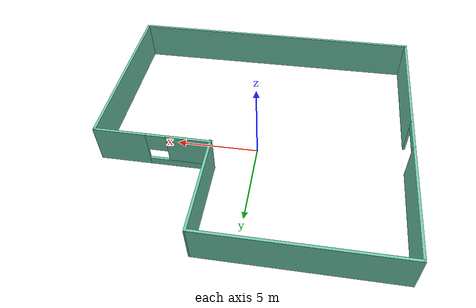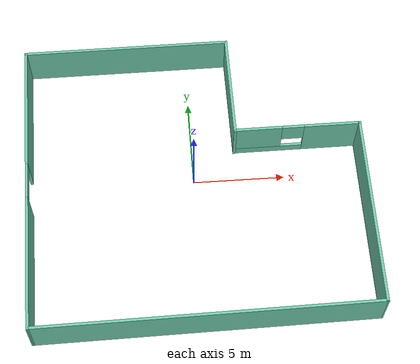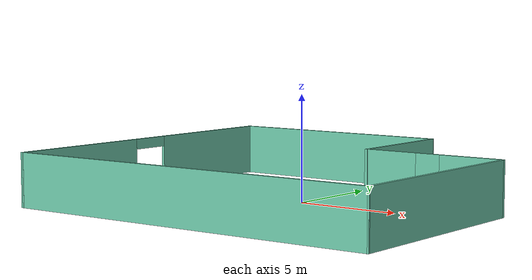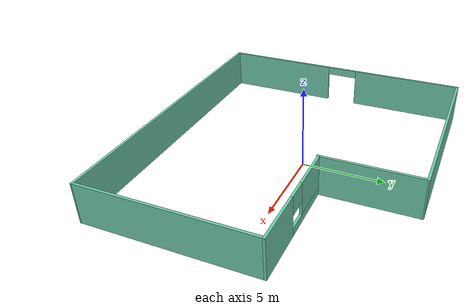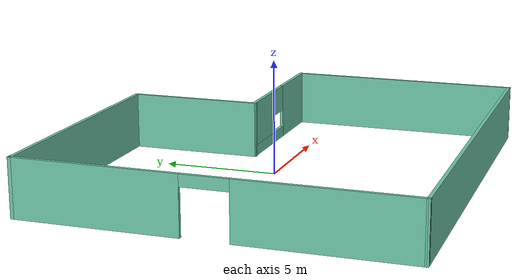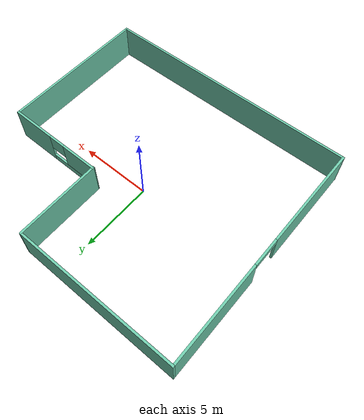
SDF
<?xml version='1.0'?>
<sdf version='1.6'>
  <model name='Building'>
    <pose frame=''>0.119519 -0.586897 0 0 -0 0</pose>
    <link name='Wall_2'>
      <collision name='Wall_2_Collision'>
        <geometry>
          <box>
            <size>11.5 0.15 2.5</size>
          </box>
        </geometry>
        <pose frame=''>0 0 1.25 0 -0 0</pose>
      </collision>
      <visual name='Wall_2_Visual'>
        <pose frame=''>0 0 1.25 0 -0 0</pose>
        <geometry>
          <box>
            <size>11.5 0.15 2.5</size>
          </box>
        </geometry>
        <material>
          <script>
            <uri>file://media/materials/scripts/gazebo.material</uri>
            <name>Gazebo/Grey</name>
          </script>
          <ambient>0.435294 0.796078 0.67451 1</ambient>
        </material>
        <meta>
          <layer>0</layer>
        </meta>
      </visual>
      <pose frame=''>-3.43932 8.17516 0 0 -0 3.14159</pose>
    </link>
    <link name='Wall_3'>
      <pose frame=''>-9.11432 0.000163 0 0 0 -1.5708</pose>
      <visual name='Wall_3_Visual_0'>
        <pose frame=''>-4.69798 0 1.25 0 -0 0</pose>
        <geometry>
          <box>
            <size>7.10403 0.15 2.5</size>
          </box>
        </geometry>
        <material>
          <script>
            <uri>file://media/materials/scripts/gazebo.material</uri>
            <name>Gazebo/Grey</name>
          </script>
          <ambient>0.435294 0.796078 0.67451 1</ambient>
        </material>
        <meta>
          <layer>0</layer>
        </meta>
      </visual>
      <collision name='Wall_3_Collision_0'>
        <geometry>
          <box>
            <size>7.10403 0.15 2.5</size>
          </box>
        </geometry>
        <pose frame=''>-4.69798 0 1.25 0 -0 0</pose>
      </collision>
      <visual name='Wall_3_Visual_1'>
        <pose frame=''>4.55202 0 1.25 0 -0 0</pose>
        <geometry>
          <box>
            <size>7.39597 0.15 2.5</size>
          </box>
        </geometry>
        <material>
          <script>
            <uri>file://media/materials/scripts/gazebo.material</uri>
            <name>Gazebo/Grey</name>
          </script>
          <ambient>0.435294 0.796078 0.67451 1</ambient>
        </material>
        <meta>
          <layer>0</layer>
        </meta>
      </visual>
      <collision name='Wall_3_Collision_1'>
        <geometry>
          <box>
            <size>7.39597 0.15 2.5</size>
          </box>
        </geometry>
        <pose frame=''>4.55202 0 1.25 0 -0 0</pose>
      </collision>
      <visual name='Wall_3_Visual_2'>
        <pose frame=''>-0.145968 0 2.25 0 -0 0</pose>
        <geometry>
          <box>
            <size>2 0.15 0.5</size>
          </box>
        </geometry>
        <material>
          <script>
            <uri>file://media/materials/scripts/gazebo.material</uri>
            <name>Gazebo/Grey</name>
          </script>
          <ambient>0.435294 0.796078 0.67451 1</ambient>
        </material>
        <meta>
          <layer>0</layer>
        </meta>
      </visual>
      <collision name='Wall_3_Collision_2'>
        <geometry>
          <box>
            <size>2 0.15 0.5</size>
          </box>
        </geometry>
        <pose frame=''>-0.145968 0 2.25 0 -0 0</pose>
      </collision>
    </link>
    <link name='Wall_4'>
      <collision name='Wall_4_Collision'>
        <geometry>
          <box>
            <size>18.3794 0.15 2.5</size>
          </box>
        </geometry>
        <pose frame=''>0 0 1.25 0 -0 0</pose>
      </collision>
      <visual name='Wall_4_Visual'>
        <pose frame=''>0 0 1.25 0 -0 0</pose>
        <geometry>
          <box>
            <size>18.3794 0.15 2.5</size>
          </box>
        </geometry>
        <material>
          <script>
            <uri>file://media/materials/scripts/gazebo.material</uri>
            <name>Gazebo/Grey</name>
          </script>
          <ambient>0.435294 0.796078 0.67451 1</ambient>
        </material>
        <meta>
          <layer>0</layer>
        </meta>
      </visual>
      <pose frame=''>0 -8.09029 0 0 -0 0.009276</pose>
    </link>
    <link name='Wall_6'>
      <collision name='Wall_6_Collision'>
        <geometry>
          <box>
            <size>10.5 0.15 2.5</size>
          </box>
        </geometry>
        <pose frame=''>0 0 1.25 0 -0 0</pose>
      </collision>
      <visual name='Wall_6_Visual'>
        <pose frame=''>0 0 1.25 0 -0 0</pose>
        <geometry>
          <box>
            <size>10.5 0.15 2.5</size>
          </box>
        </geometry>
        <material>
          <script>
            <uri>file://media/materials/scripts/gazebo.material</uri>
            <name>Gazebo/Grey</name>
          </script>
          <ambient>0.435294 0.796078 0.67451 1</ambient>
        </material>
        <meta>
          <layer>0</layer>
        </meta>
      </visual>
      <pose frame=''>9.11432 -2.83075 0 0 -0 1.5708</pose>
    </link>
    <link name='Wall_7'>
      <pose frame=''>5.68932 2.38471 0 0 -0 3.14159</pose>
      <visual name='Wall_7_Visual_0'>
        <pose frame=''>-1.93487 0 1.25 0 -0 0</pose>
        <geometry>
          <box>
            <size>3.13027 0.15 2.5</size>
          </box>
        </geometry>
        <material>
          <script>
            <uri>file://media/materials/scripts/gazebo.material</uri>
            <name>Gazebo/Grey</name>
          </script>
          <ambient>0.435294 0.796078 0.67451 1</ambient>
        </material>
        <meta>
          <layer>0</layer>
        </meta>
      </visual>
      <collision name='Wall_7_Collision_0'>
        <geometry>
          <box>
            <size>3.13027 0.15 2.5</size>
          </box>
        </geometry>
        <pose frame=''>-1.93487 0 1.25 0 -0 0</pose>
      </collision>
      <visual name='Wall_7_Visual_1'>
        <pose frame=''>1.56513 0 0.25 0 -0 0</pose>
        <geometry>
          <box>
            <size>3.86973 0.15 0.5</size>
          </box>
        </geometry>
        <material>
          <script>
            <uri>file://media/materials/scripts/gazebo.material</uri>
            <name>Gazebo/Grey</name>
          </script>
          <ambient>0.435294 0.796078 0.67451 1</ambient>
        </material>
        <meta>
          <layer>0</layer>
        </meta>
      </visual>
      <collision name='Wall_7_Collision_1'>
        <geometry>
          <box>
            <size>3.86973 0.15 0.5</size>
          </box>
        </geometry>
        <pose frame=''>1.56513 0 0.25 0 -0 0</pose>
      </collision>
      <visual name='Wall_7_Visual_2'>
        <pose frame=''>2.16513 0 1.5 0 -0 0</pose>
        <geometry>
          <box>
            <size>2.66974 0.15 2</size>
          </box>
        </geometry>
        <material>
          <script>
            <uri>file://media/materials/scripts/gazebo.material</uri>
            <name>Gazebo/Grey</name>
          </script>
          <ambient>0.435294 0.796078 0.67451 1</ambient>
        </material>
        <meta>
          <layer>0</layer>
        </meta>
      </visual>
      <collision name='Wall_7_Collision_2'>
        <geometry>
          <box>
            <size>2.66974 0.15 2</size>
          </box>
        </geometry>
        <pose frame=''>2.16513 0 1.5 0 -0 0</pose>
      </collision>
      <visual name='Wall_7_Visual_3'>
        <pose frame=''>0.230265 0 1.9 0 -0 0</pose>
        <geometry>
          <box>
            <size>1.2 0.15 1.2</size>
          </box>
        </geometry>
        <material>
          <script>
            <uri>file://media/materials/scripts/gazebo.material</uri>
            <name>Gazebo/Grey</name>
          </script>
          <ambient>0.435294 0.796078 0.67451 1</ambient>
        </material>
        <meta>
          <layer>0</layer>
        </meta>
      </visual>
      <collision name='Wall_7_Collision_3'>
        <geometry>
          <box>
            <size>1.2 0.15 1.2</size>
          </box>
        </geometry>
        <pose frame=''>0.230265 0 1.9 0 -0 0</pose>
      </collision>
    </link>
    <link name='Wall_8'>
      <collision name='Wall_8_Collision'>
        <geometry>
          <box>
            <size>5.98098 0.15 2.5</size>
          </box>
        </geometry>
        <pose frame=''>0 0 1.25 0 -0 0</pose>
      </collision>
      <visual name='Wall_8_Visual'>
        <pose frame=''>0 0 1.25 0 -0 0</pose>
        <geometry>
          <box>
            <size>5.98098 0.15 2.5</size>
          </box>
        </geometry>
        <material>
          <script>
            <uri>file://media/materials/scripts/gazebo.material</uri>
            <name>Gazebo/Grey</name>
          </script>
          <ambient>0.435294 0.796078 0.67451 1</ambient>
        </material>
        <meta>
          <layer>0</layer>
        </meta>
      </visual>
      <pose frame=''>2.25 5.25971 0 0 -0 1.57571</pose>
    </link>
    <static>1</static>
  </model>
</sdf>
